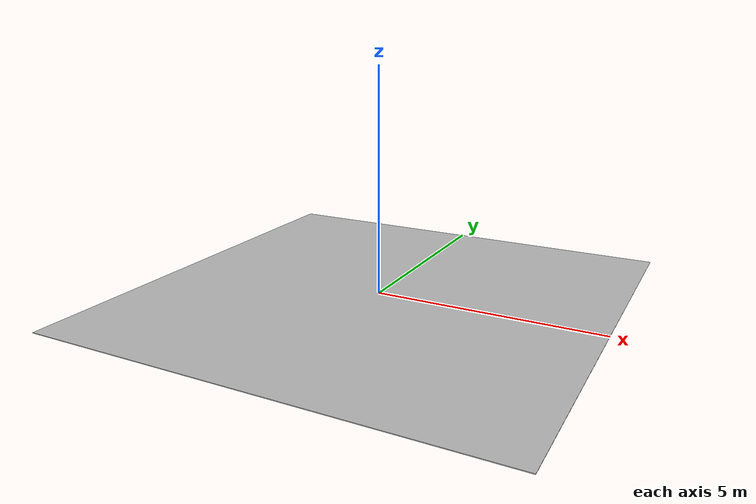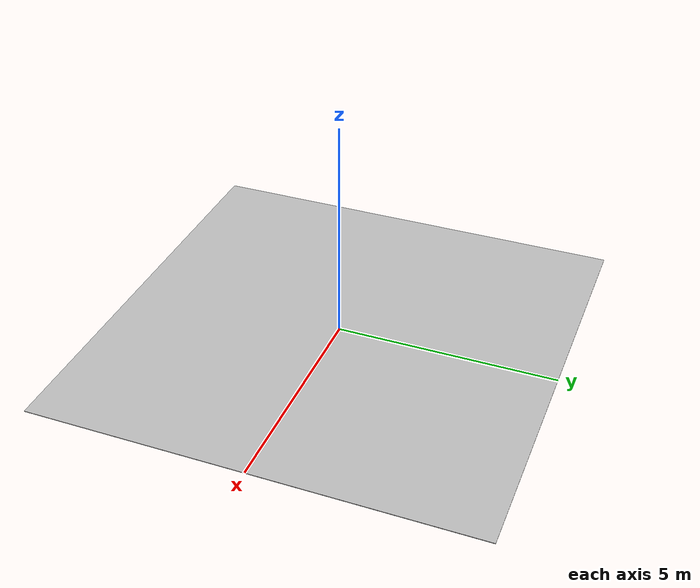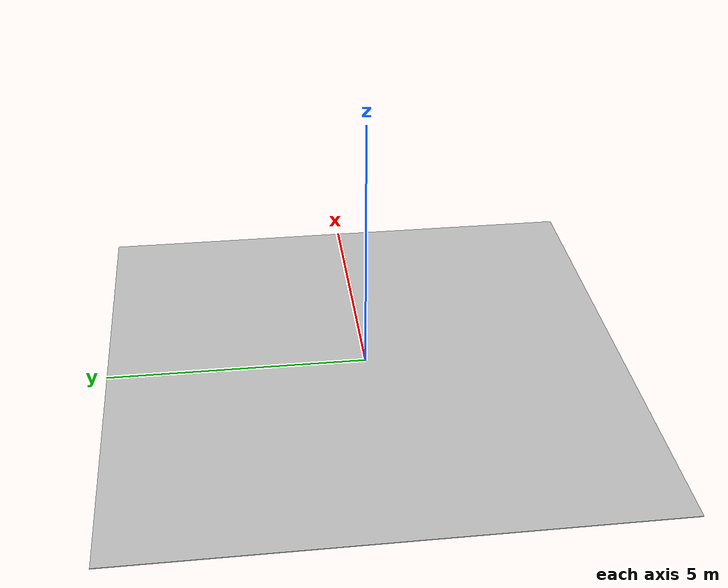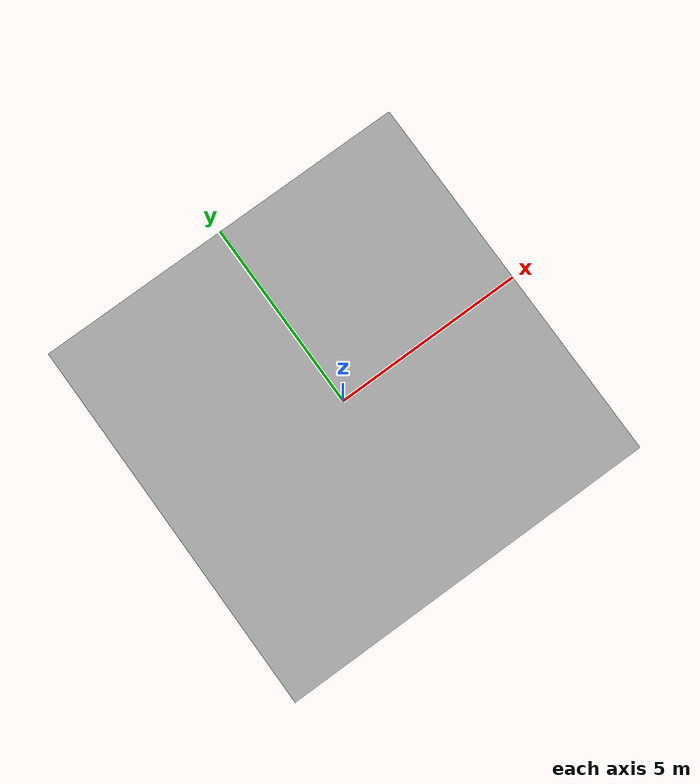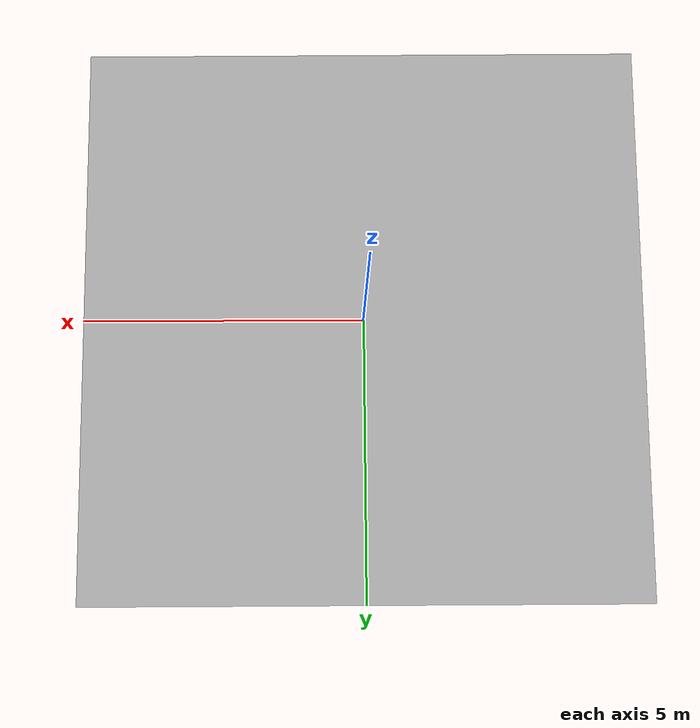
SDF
<?xml version="1.0"?>
<sdf version="1.7">
  <model name="ground_model">
    <!--
    Axes:
      +X - Pointing towards front (slope)
      +Y - Pointing to left side
      +Z - Up
    Origin:
      (0, 0, 0) at the center bottom of the bin
    -->
    <link name="ground_base">
      <inertial>
        <mass>18.70</mass>
        <inertia>
          <ixx>0.79</ixx>
          <ixy>0</ixy>
          <ixz>0</ixz>
          <iyy>0.53</iyy>
          <iyz>0</iyz>
          <izz>1.2</izz>
        </inertia>
      </inertial>
      <visual name="bottom">
        <pose>0.0 0.0 -0.0075 0 0 0</pose>
        <geometry>
          <box>
            <size>10 10 0.015</size>
          </box>
        </geometry>
      </visual>
      <collision name="bottom">
        <pose>0.0 0.0 -0.0075 0 0 0</pose>
        <geometry>
          <box>
            <size>10 10 0.015</size>
          </box>
        </geometry>
      </collision>
    </link>
  </model>
</sdf>
